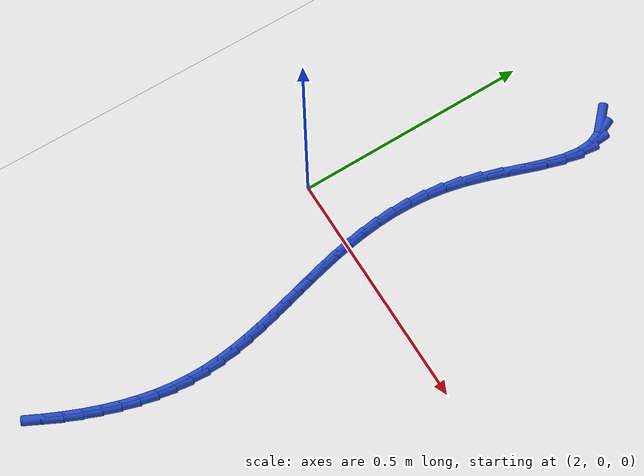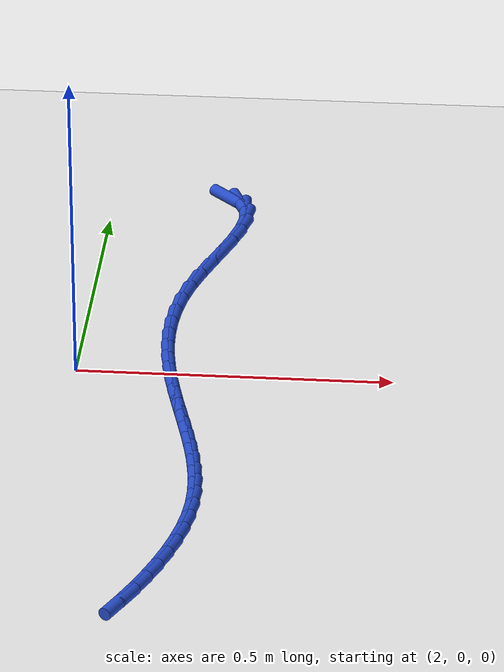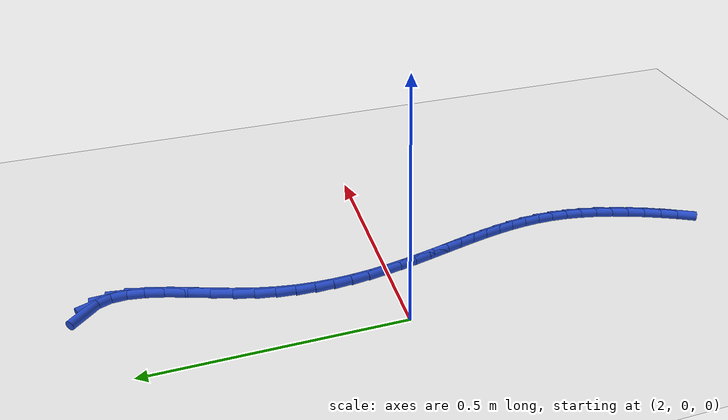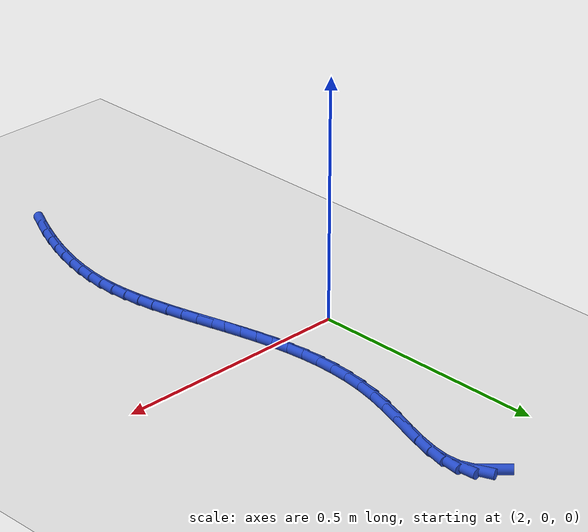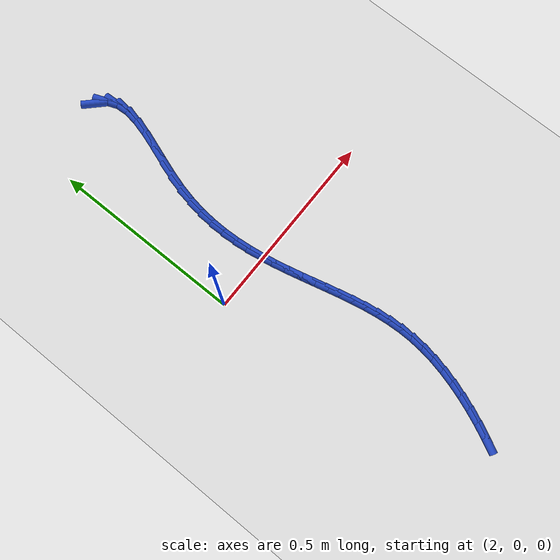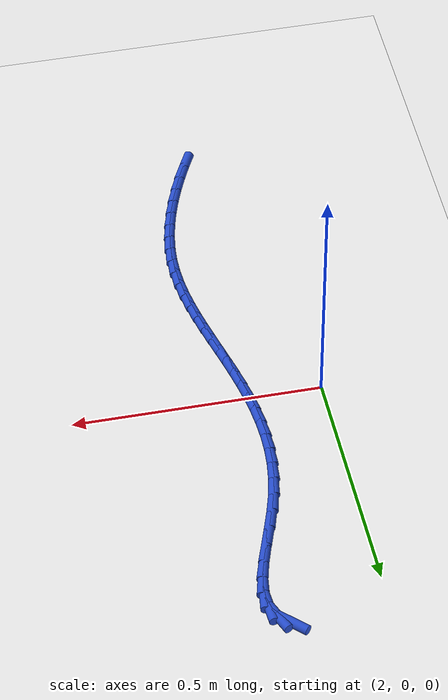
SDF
<sdf version="1.6">
 <world name="default">
  <model name="ground_plane">
   <static>1</static>
   <link name="link">
    <collision name="collision">
     <geometry><plane><normal>0 0 1</normal><size>100 100</size></plane></geometry>
     <surface><friction><ode><mu>100</mu><mu2>50</mu2></ode></friction></surface>
    </collision>
    <visual name="visual">
     <cast_shadows>0</cast_shadows>
     <geometry><plane><normal>0 0 1</normal><size>100 100</size></plane></geometry>
     <material>
      <script><uri>file://media/materials/scripts/gazebo.material</uri><name>Gazebo/WhiteGlow</name></script>
     </material>
    </visual>
   </link>
  </model>
  <model name="line">
   <link name="link_90">
    <pose>2.1937180855282414 0.5786966726831391 0.01 0 1.57 -0.7797357250943816</pose>
    <collision name="collision">
     <geometry><cylinder><radius>0.01</radius><length>0.08</length></cylinder></geometry>
    </collision>
    <visual name="visual">
     <material>
      <script><name>Gazebo/Blue</name><uri>file://media/materials/scripts/gazebo.material</uri></script>
     </material>
     <geometry><cylinder><radius>0.01</radius><length>0.08</length></cylinder></geometry>
    </visual>
   </link>
   <link name="link_91">
    <pose>2.2139035362966473 0.5587385349374249 0.01 0 1.57 -1.194065106549389</pose>
    <collision name="collision">
     <geometry><cylinder><radius>0.01</radius><length>0.08</length></cylinder></geometry>
    </collision>
    <visual name="visual">
     <material>
      <script><name>Gazebo/Blue</name><uri>file://media/materials/scripts/gazebo.material</uri></script>
     </material>
     <geometry><cylinder><radius>0.01</radius><length>0.08</length></cylinder></geometry>
    </visual>
   </link>
   <link name="link_92">
    <pose>2.2240127809233825 0.5331860969045834 0.01 0 1.57 -1.5134267150380483</pose>
    <collision name="collision">
     <geometry><cylinder><radius>0.01</radius><length>0.08</length></cylinder></geometry>
    </collision>
    <visual name="visual">
     <material>
      <script><name>Gazebo/Blue</name><uri>file://media/materials/scripts/gazebo.material</uri></script>
     </material>
     <geometry><cylinder><radius>0.01</radius><length>0.08</length></cylinder></geometry>
    </visual>
   </link>
   <link name="link_93">
    <pose>2.225753587221357 0.5028756938358568 0.01 0 1.57 1.4282728691432591</pose>
    <collision name="collision">
     <geometry><cylinder><radius>0.01</radius><length>0.08</length></cylinder></geometry>
    </collision>
    <visual name="visual">
     <material>
      <script><name>Gazebo/Blue</name><uri>file://media/materials/scripts/gazebo.material</uri></script>
     </material>
     <geometry><cylinder><radius>0.01</radius><length>0.08</length></cylinder></geometry>
    </visual>
   </link>
   <link name="link_94">
    <pose>2.2208420213793105 0.4686478923753775 0.01 0 1.57 1.3126990277508228</pose>
    <collision name="collision">
     <geometry><cylinder><radius>0.01</radius><length>0.08</length></cylinder></geometry>
    </collision>
    <visual name="visual">
     <material>
      <script><name>Gazebo/Blue</name><uri>file://media/materials/scripts/gazebo.material</uri></script>
     </material>
     <geometry><cylinder><radius>0.01</radius><length>0.08</length></cylinder></geometry>
    </visual>
   </link>
   <link name="link_95">
    <pose>2.210994149585984 0.43134325916727695 0.01 0 1.57 1.2516014778433917</pose>
    <collision name="collision">
     <geometry><cylinder><radius>0.01</radius><length>0.08</length></cylinder></geometry>
    </collision>
    <visual name="visual">
     <material>
      <script><name>Gazebo/Blue</name><uri>file://media/materials/scripts/gazebo.material</uri></script>
     </material>
     <geometry><cylinder><radius>0.01</radius><length>0.08</length></cylinder></geometry>
    </visual>
   </link>
   <link name="link_96">
    <pose>2.1979260380301184 0.3918023608556877 0.01 0 1.57 1.2288111155275985</pose>
    <collision name="collision">
     <geometry><cylinder><radius>0.01</radius><length>0.08</length></cylinder></geometry>
    </collision>
    <visual name="visual">
     <material>
      <script><name>Gazebo/Blue</name><uri>file://media/materials/scripts/gazebo.material</uri></script>
     </material>
     <geometry><cylinder><radius>0.01</radius><length>0.08</length></cylinder></geometry>
    </visual>
   </link>
   <link name="link_97">
    <pose>2.183353752900452 0.35086576408474107 0.01 0 1.57 1.2375978457063055</pose>
    <collision name="collision">
     <geometry><cylinder><radius>0.01</radius><length>0.08</length></cylinder></geometry>
    </collision>
    <visual name="visual">
     <material>
      <script><name>Gazebo/Blue</name><uri>file://media/materials/scripts/gazebo.material</uri></script>
     </material>
     <geometry><cylinder><radius>0.01</radius><length>0.08</length></cylinder></geometry>
    </visual>
   </link>
   <link name="link_98">
    <pose>2.1689933603857265 0.3093740354985688 0.01 0 1.57 1.2777672646779485</pose>
    <collision name="collision">
     <geometry><cylinder><radius>0.01</radius><length>0.08</length></cylinder></geometry>
    </collision>
    <visual name="visual">
     <material>
      <script><name>Gazebo/Blue</name><uri>file://media/materials/scripts/gazebo.material</uri></script>
     </material>
     <geometry><cylinder><radius>0.01</radius><length>0.08</length></cylinder></geometry>
    </visual>
   </link>
   <link name="link_99">
    <pose>2.1565608040812525 0.2681676866795718 0.01 0 1.57 1.3460673625649646</pose>
    <collision name="collision">
     <geometry><cylinder><radius>0.01</radius><length>0.08</length></cylinder></geometry>
    </collision>
    <visual name="visual">
     <material>
      <script><name>Gazebo/Blue</name><uri>file://media/materials/scripts/gazebo.material</uri></script>
     </material>
     <geometry><cylinder><radius>0.01</radius><length>0.08</length></cylinder></geometry>
    </visual>
   </link>
   <link name="link_100">
    <pose>2.147356103537456 0.2279004206817361 0.01 0 1.57 1.4186722724269851</pose>
    <collision name="collision">
     <geometry><cylinder><radius>0.01</radius><length>0.08</length></cylinder></geometry>
    </collision>
    <visual name="visual">
     <material>
      <script><name>Gazebo/Blue</name><uri>file://media/materials/scripts/gazebo.material</uri></script>
     </material>
     <geometry><cylinder><radius>0.01</radius><length>0.08</length></cylinder></geometry>
    </visual>
   </link>
   <link name="link_101">
    <pose>2.1413343709057804 0.18862188754709408 0.01 0 1.57 1.488738456251134</pose>
    <collision name="collision">
     <geometry><cylinder><radius>0.01</radius><length>0.08</length></cylinder></geometry>
    </collision>
    <visual name="visual">
     <material>
      <script><name>Gazebo/Blue</name><uri>file://media/materials/scripts/gazebo.material</uri></script>
     </material>
     <geometry><cylinder><radius>0.01</radius><length>0.08</length></cylinder></geometry>
    </visual>
   </link>
   <link name="link_102">
    <pose>2.1381793807626672 0.15025986849640402 0.01 0 1.57 1.5546860535242888</pose>
    <collision name="collision">
     <geometry><cylinder><radius>0.01</radius><length>0.08</length></cylinder></geometry>
    </collision>
    <visual name="visual">
     <material>
      <script><name>Gazebo/Blue</name><uri>file://media/materials/scripts/gazebo.material</uri></script>
     </material>
     <geometry><cylinder><radius>0.01</radius><length>0.08</length></cylinder></geometry>
    </visual>
   </link>
   <link name="link_103">
    <pose>2.1375749076845603 0.11274214475042633 0.01 0 1.57 -1.526471320292968</pose>
    <collision name="collision">
     <geometry><cylinder><radius>0.01</radius><length>0.08</length></cylinder></geometry>
    </collision>
    <visual name="visual">
     <material>
      <script><name>Gazebo/Blue</name><uri>file://media/materials/scripts/gazebo.material</uri></script>
     </material>
     <geometry><cylinder><radius>0.01</radius><length>0.08</length></cylinder></geometry>
    </visual>
   </link>
   <link name="link_104">
    <pose>2.139204726247904 0.07599649752991948 0.01 0 1.57 -1.4726851803526793</pose>
    <collision name="collision">
     <geometry><cylinder><radius>0.01</radius><length>0.08</length></cylinder></geometry>
    </collision>
    <visual name="visual">
     <material>
      <script><name>Gazebo/Blue</name><uri>file://media/materials/scripts/gazebo.material</uri></script>
     </material>
     <geometry><cylinder><radius>0.01</radius><length>0.08</length></cylinder></geometry>
    </visual>
   </link>
   <link name="link_105">
    <pose>2.142752611029142 0.039950708055643804 0.01 0 1.57 -1.4264101966500768</pose>
    <collision name="collision">
     <geometry><cylinder><radius>0.01</radius><length>0.08</length></cylinder></geometry>
    </collision>
    <visual name="visual">
     <material>
      <script><name>Gazebo/Blue</name><uri>file://media/materials/scripts/gazebo.material</uri></script>
     </material>
     <geometry><cylinder><radius>0.01</radius><length>0.08</length></cylinder></geometry>
    </visual>
   </link>
   <link name="link_106">
    <pose>2.147902336604717 0.004532557548357843 0.01 0 1.57 -1.3882602018610741</pose>
    <collision name="collision">
     <geometry><cylinder><radius>0.01</radius><length>0.08</length></cylinder></geometry>
    </collision>
    <visual name="visual">
     <material>
      <script><name>Gazebo/Blue</name><uri>file://media/materials/scripts/gazebo.material</uri></script>
     </material>
     <geometry><cylinder><radius>0.01</radius><length>0.08</length></cylinder></geometry>
    </visual>
   </link>
   <link name="link_107">
    <pose>2.154337677551073 -0.03033017277117803 0.01 0 1.57 -1.3586550955291756</pose>
    <collision name="collision">
     <geometry><cylinder><radius>0.01</radius><length>0.08</length></cylinder></geometry>
    </collision>
    <visual name="visual">
     <material>
      <script><name>Gazebo/Blue</name><uri>file://media/materials/scripts/gazebo.material</uri></script>
     </material>
     <geometry><cylinder><radius>0.01</radius><length>0.08</length></cylinder></geometry>
    </visual>
   </link>
   <link name="link_108">
    <pose>2.1617424084446553 -0.06470970168220531 0.01 0 1.57 -1.337885024137112</pose>
    <collision name="collision">
     <geometry><cylinder><radius>0.01</radius><length>0.08</length></cylinder></geometry>
    </collision>
    <visual name="visual">
     <material>
      <script><name>Gazebo/Blue</name><uri>file://media/materials/scripts/gazebo.material</uri></script>
     </material>
     <geometry><cylinder><radius>0.01</radius><length>0.08</length></cylinder></geometry>
    </visual>
   </link>
   <link name="link_109">
    <pose>2.1698003038619045 -0.0986782479639637 0.01 0 1.57 -1.32617063379561</pose>
    <collision name="collision">
     <geometry><cylinder><radius>0.01</radius><length>0.08</length></cylinder></geometry>
    </collision>
    <visual name="visual">
     <material>
      <script><name>Gazebo/Blue</name><uri>file://media/materials/scripts/gazebo.material</uri></script>
     </material>
     <geometry><cylinder><radius>0.01</radius><length>0.08</length></cylinder></geometry>
    </visual>
   </link>
   <link name="link_110">
    <pose>2.1781951383792655 -0.13230803039569455 0.01 0 1.57 -1.3237103954781941</pose>
    <collision name="collision">
     <geometry><cylinder><radius>0.01</radius><length>0.08</length></cylinder></geometry>
    </collision>
    <visual name="visual">
     <material>
      <script><name>Gazebo/Blue</name><uri>file://media/materials/scripts/gazebo.material</uri></script>
     </material>
     <geometry><cylinder><radius>0.01</radius><length>0.08</length></cylinder></geometry>
    </visual>
   </link>
   <link name="link_111">
    <pose>2.1866106865731822 -0.1656712677566377 0.01 0 1.57 -1.3307095735899024</pose>
    <collision name="collision">
     <geometry><cylinder><radius>0.01</radius><length>0.08</length></cylinder></geometry>
    </collision>
    <visual name="visual">
     <material>
      <script><name>Gazebo/Blue</name><uri>file://media/materials/scripts/gazebo.material</uri></script>
     </material>
     <geometry><cylinder><radius>0.01</radius><length>0.08</length></cylinder></geometry>
    </visual>
   </link>
   <link name="link_112">
    <pose>2.1947307230200983 -0.19884017882603408 0.01 0 1.57 -1.34738699696556</pose>
    <collision name="collision">
     <geometry><cylinder><radius>0.01</radius><length>0.08</length></cylinder></geometry>
    </collision>
    <visual name="visual">
     <material>
      <script><name>Gazebo/Blue</name><uri>file://media/materials/scripts/gazebo.material</uri></script>
     </material>
     <geometry><cylinder><radius>0.01</radius><length>0.08</length></cylinder></geometry>
    </visual>
   </link>
   <link name="link_113">
    <pose>2.2022390222964563 -0.23188698238312422 0.01 0 1.57 -1.3739558420042326</pose>
    <collision name="collision">
     <geometry><cylinder><radius>0.01</radius><length>0.08</length></cylinder></geometry>
    </collision>
    <visual name="visual">
     <material>
      <script><name>Gazebo/Blue</name><uri>file://media/materials/scripts/gazebo.material</uri></script>
     </material>
     <geometry><cylinder><radius>0.01</radius><length>0.08</length></cylinder></geometry>
    </visual>
   </link>
   <link name="link_114">
    <pose>2.2088193589787006 -0.26488389720714955 0.01 0 1.57 -1.4105743478422037</pose>
    <collision name="collision">
     <geometry><cylinder><radius>0.01</radius><length>0.08</length></cylinder></geometry>
    </collision>
    <visual name="visual">
     <material>
      <script><name>Gazebo/Blue</name><uri>file://media/materials/scripts/gazebo.material</uri></script>
     </material>
     <geometry><cylinder><radius>0.01</radius><length>0.08</length></cylinder></geometry>
    </visual>
   </link>
   <link name="link_115">
    <pose>2.2141555076432753 -0.297903142077349 0.01 0 1.57 -1.4572636209553493</pose>
    <collision name="collision">
     <geometry><cylinder><radius>0.01</radius><length>0.08</length></cylinder></geometry>
    </collision>
    <visual name="visual">
     <material>
      <script><name>Gazebo/Blue</name><uri>file://media/materials/scripts/gazebo.material</uri></script>
     </material>
     <geometry><cylinder><radius>0.01</radius><length>0.08</length></cylinder></geometry>
    </visual>
   </link>
   <link name="link_116">
    <pose>2.2179312428666234 -0.3310169357729641 0.01 0 1.57 -1.5137949116955085</pose>
    <collision name="collision">
     <geometry><cylinder><radius>0.01</radius><length>0.08</length></cylinder></geometry>
    </collision>
    <visual name="visual">
     <material>
      <script><name>Gazebo/Blue</name><uri>file://media/materials/scripts/gazebo.material</uri></script>
     </material>
     <geometry><cylinder><radius>0.01</radius><length>0.08</length></cylinder></geometry>
    </visual>
   </link>
   <link name="link_117">
    <pose>2.219830339225188 -0.3642974970732351 0.01 0 1.57 1.5620324731909199</pose>
    <collision name="collision">
     <geometry><cylinder><radius>0.01</radius><length>0.08</length></cylinder></geometry>
    </collision>
    <visual name="visual">
     <material>
      <script><name>Gazebo/Blue</name><uri>file://media/materials/scripts/gazebo.material</uri></script>
     </material>
     <geometry><cylinder><radius>0.01</radius><length>0.08</length></cylinder></geometry>
    </visual>
   </link>
   <link name="link_118">
    <pose>2.2195365712954125 -0.39781704475740354 0.01 0 1.57 1.4892906407734199</pose>
    <collision name="collision">
     <geometry><cylinder><radius>0.01</radius><length>0.08</length></cylinder></geometry>
    </collision>
    <visual name="visual">
     <material>
      <script><name>Gazebo/Blue</name><uri>file://media/materials/scripts/gazebo.material</uri></script>
     </material>
     <geometry><cylinder><radius>0.01</radius><length>0.08</length></cylinder></geometry>
    </visual>
   </link>
   <link name="link_119">
    <pose>2.2167743081750038 -0.43163239936782605 0.01 0 1.57 1.4197599168719934</pose>
    <collision name="collision">
     <geometry><cylinder><radius>0.01</radius><length>0.08</length></cylinder></geometry>
    </collision>
    <visual name="visual">
     <material>
      <script><name>Gazebo/Blue</name><uri>file://media/materials/scripts/gazebo.material</uri></script>
     </material>
     <geometry><cylinder><radius>0.01</radius><length>0.08</length></cylinder></geometry>
    </visual>
   </link>
   <link name="link_120">
    <pose>2.2115928548642048 -0.46567712737603023 0.01 0 1.57 1.3575254541519568</pose>
    <collision name="collision">
     <geometry><cylinder><radius>0.01</radius><length>0.08</length></cylinder></geometry>
    </collision>
    <visual name="visual">
     <material>
      <script><name>Gazebo/Blue</name><uri>file://media/materials/scripts/gazebo.material</uri></script>
     </material>
     <geometry><cylinder><radius>0.01</radius><length>0.08</length></cylinder></geometry>
    </visual>
   </link>
   <link name="link_121">
    <pose>2.2041975091937744 -0.49982562434866307 0.01 0 1.57 1.3019337084913316</pose>
    <collision name="collision">
     <geometry><cylinder><radius>0.01</radius><length>0.08</length></cylinder></geometry>
    </collision>
    <visual name="visual">
     <material>
      <script><name>Gazebo/Blue</name><uri>file://media/materials/scripts/gazebo.material</uri></script>
     </material>
     <geometry><cylinder><radius>0.01</radius><length>0.08</length></cylinder></geometry>
    </visual>
   </link>
   <link name="link_122">
    <pose>2.194794556087231 -0.5339519114302167 0.01 0 1.57 1.2522742930205133</pose>
    <collision name="collision">
     <geometry><cylinder><radius>0.01</radius><length>0.08</length></cylinder></geometry>
    </collision>
    <visual name="visual">
     <material>
      <script><name>Gazebo/Blue</name><uri>file://media/materials/scripts/gazebo.material</uri></script>
     </material>
     <geometry><cylinder><radius>0.01</radius><length>0.08</length></cylinder></geometry>
    </visual>
   </link>
   <link name="link_123">
    <pose>2.183590280468093 -0.5679300097651809 0.01 0 1.57 1.2078614237819887</pose>
    <collision name="collision">
     <geometry><cylinder><radius>0.01</radius><length>0.08</length></cylinder></geometry>
    </collision>
    <visual name="visual">
     <material>
      <script><name>Gazebo/Blue</name><uri>file://media/materials/scripts/gazebo.material</uri></script>
     </material>
     <geometry><cylinder><radius>0.01</radius><length>0.08</length></cylinder></geometry>
    </visual>
   </link>
   <link name="link_124">
    <pose>2.1707909672598804 -0.6016339404980482 0.01 0 1.57 1.1680623601713136</pose>
    <collision name="collision">
     <geometry><cylinder><radius>0.01</radius><length>0.08</length></cylinder></geometry>
    </collision>
    <visual name="visual">
     <material>
      <script><name>Gazebo/Blue</name><uri>file://media/materials/scripts/gazebo.material</uri></script>
     </material>
     <geometry><cylinder><radius>0.01</radius><length>0.08</length></cylinder></geometry>
    </visual>
   </link>
   <link name="link_125">
    <pose>2.15660290138611 -0.6349377247733099 0.01 0 1.57 1.1323095521492967</pose>
    <collision name="collision">
     <geometry><cylinder><radius>0.01</radius><length>0.08</length></cylinder></geometry>
    </collision>
    <visual name="visual">
     <material>
      <script><name>Gazebo/Blue</name><uri>file://media/materials/scripts/gazebo.material</uri></script>
     </material>
     <geometry><cylinder><radius>0.01</radius><length>0.08</length></cylinder></geometry>
    </visual>
   </link>
   <link name="link_126">
    <pose>2.141232367770301 -0.6677153837354586 0.01 0 1.57 1.1001030106544847</pose>
    <collision name="collision">
     <geometry><cylinder><radius>0.01</radius><length>0.08</length></cylinder></geometry>
    </collision>
    <visual name="visual">
     <material>
      <script><name>Gazebo/Blue</name><uri>file://media/materials/scripts/gazebo.material</uri></script>
     </material>
     <geometry><cylinder><radius>0.01</radius><length>0.08</length></cylinder></geometry>
    </visual>
   </link>
  </model>
 </world>
</sdf>
